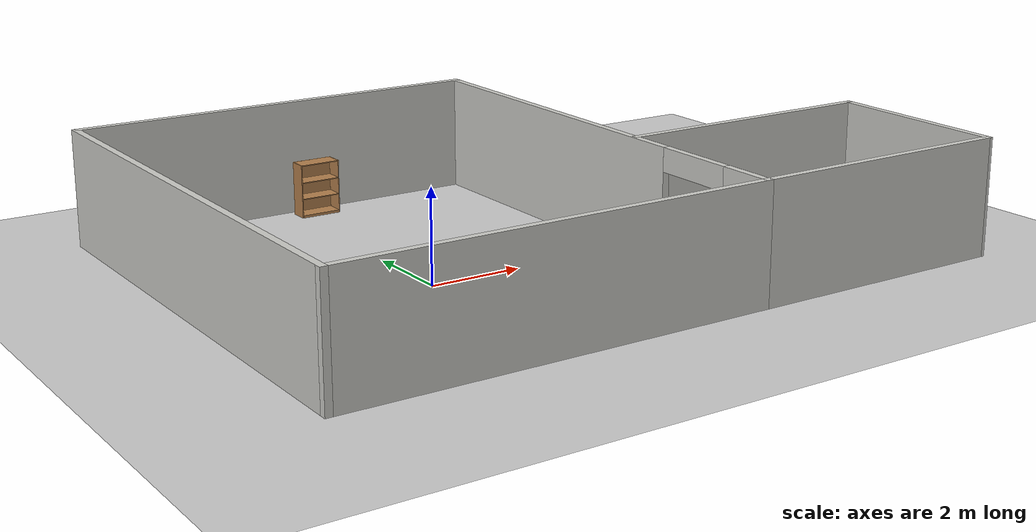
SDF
<sdf version="1.6">
 <world name="default">
  <light name="sun" type="directional">
   <pose>0 0 10 0 -0 0</pose>
   <diffuse>0.8 0.8 0.8 1</diffuse>
   <specular>0.2 0.2 0.2 1</specular>
   <attenuation>
    <range>1000</range>
    <constant>0.9</constant>
    <linear>0.01</linear>
    <quadratic>0.001</quadratic>
   </attenuation>
   <direction>-0.5 0.1 -0.9</direction>
  </light>
  <model name="ground_plane">
   <static>1</static>
   <link name="link">
    <collision name="collision">
     <geometry><plane><normal>0 0 1</normal><size>100 100</size></plane></geometry>
     <surface>
      <contact><collide_bitmask>65535</collide_bitmask></contact>
      <friction><ode><mu>100</mu><mu2>50</mu2></ode></friction>
     </surface>
    </collision>
    <visual name="visual">
     <cast_shadows>0</cast_shadows>
     <geometry><plane><normal>0 0 1</normal><size>100 100</size></plane></geometry>
     <material>
      <script><uri>file://media/materials/scripts/gazebo.material</uri><name>Gazebo/Grey</name></script>
     </material>
    </visual>
   </link>
  </model>
  <gravity>0 0 -9.8</gravity>
  <magnetic_field>6e-06 2.3e-05 -4.2e-05</magnetic_field>
  <atmosphere type="adiabatic"/>
  <physics name="default_physics" default="0" type="ode">
   <max_step_size>0.001</max_step_size>
   <real_time_factor>1</real_time_factor>
   <real_time_update_rate>1000</real_time_update_rate>
  </physics>
  <scene><ambient>0.4 0.4 0.4 1</ambient><background>0.7 0.7 0.7 1</background><shadows>1</shadows></scene>
  <spherical_coordinates>
   <surface_model>EARTH_WGS84</surface_model>
   <latitude_deg>0</latitude_deg>
   <longitude_deg>0</longitude_deg>
   <elevation>0</elevation>
   <heading_deg>0</heading_deg>
  </spherical_coordinates>
  <model name="trybuild">
   <pose>2.75577 0.731582 0.045482 0 -0 0</pose>
   <link name="Wall_10">
    <collision name="Wall_10_Collision">
     <geometry><box><size>6 0.15 2.5</size></box></geometry>
     <pose>0 0 1.25 0 -0 0</pose>
    </collision>
    <visual name="Wall_10_Visual">
     <pose>0 0 1.25 0 -0 0</pose>
     <geometry><box><size>6 0.15 2.5</size></box></geometry>
     <material>
      <script><uri>file://media/materials/scripts/gazebo.material</uri><name>Gazebo/CeilingTiled</name></script>
      <ambient>0.760784 0.662745 0.627451 1</ambient>
     </material>
     <meta><layer>0</layer></meta>
    </visual>
    <pose>4.57697 -1.44503 0 0 -0 0</pose>
   </link>
   <link name="Wall_13">
    <collision name="Wall_13_Collision">
     <geometry><box><size>6 0.15 2.5</size></box></geometry>
     <pose>0 0 1.25 0 -0 0</pose>
    </collision>
    <visual name="Wall_13_Visual">
     <pose>0 0 1.25 0 -0 0</pose>
     <geometry><box><size>6 0.15 2.5</size></box></geometry>
     <material>
      <script><uri>file://media/materials/scripts/gazebo.material</uri><name>Gazebo/CeilingTiled</name></script>
      <ambient>0.760784 0.662745 0.627451 1</ambient>
     </material>
     <meta><layer>0</layer></meta>
    </visual>
    <pose>4.52201 -5.42449 0 0 -0 0</pose>
   </link>
   <link name="Wall_16">
    <collision name="Wall_16_Collision">
     <geometry><box><size>4.12983 0.15 2.5</size></box></geometry>
     <pose>0 0 1.25 0 -0 0</pose>
    </collision>
    <visual name="Wall_16_Visual">
     <pose>0 0 1.25 0 -0 0</pose>
     <geometry><box><size>4.12983 0.15 2.5</size></box></geometry>
     <material>
      <script><uri>file://media/materials/scripts/gazebo.material</uri><name>Gazebo/CeilingTiled</name></script>
      <ambient>0.760784 0.662745 0.627451 1</ambient>
     </material>
     <meta><layer>0</layer></meta>
    </visual>
    <pose>7.47449 -3.43476 0 0 0 -1.58461</pose>
   </link>
   <link name="Wall_2">
    <collision name="Wall_2_Collision">
     <geometry><box><size>9.25 0.15 2.5</size></box></geometry>
     <pose>0 0 1.25 0 -0 0</pose>
    </collision>
    <visual name="Wall_2_Visual">
     <pose>0 0 1.25 0 -0 0</pose>
     <geometry><box><size>9.25 0.15 2.5</size></box></geometry>
     <material>
      <script><uri>file://media/materials/scripts/gazebo.material</uri><name>Gazebo/CeilingTiled</name></script>
      <ambient>0.760784 0.662745 0.627451 1</ambient>
     </material>
     <meta><layer>0</layer></meta>
    </visual>
    <pose>-2.95299 -5.42449 0 0 -0 3.14159</pose>
   </link>
   <link name="Wall_5">
    <collision name="Wall_5_Collision">
     <geometry><box><size>11 0.15 2.5</size></box></geometry>
     <pose>0 0 1.25 0 -0 0</pose>
    </collision>
    <visual name="Wall_5_Visual">
     <pose>0 0 1.25 0 -0 0</pose>
     <geometry><box><size>11 0.15 2.5</size></box></geometry>
     <material>
      <script><uri>file://media/materials/scripts/gazebo.material</uri><name>Gazebo/CeilingTiled</name></script>
      <ambient>0.760784 0.662745 0.627451 1</ambient>
     </material>
     <meta><layer>0</layer></meta>
    </visual>
    <pose>-7.50299 0.000514 0 0 -0 1.5708</pose>
   </link>
   <link name="Wall_6">
    <collision name="Wall_6_Collision">
     <geometry><box><size>9.25 0.15 2.5</size></box></geometry>
     <pose>0 0 1.25 0 -0 0</pose>
    </collision>
    <visual name="Wall_6_Visual">
     <pose>0 0 1.25 0 -0 0</pose>
     <geometry><box><size>9.25 0.15 2.5</size></box></geometry>
     <material>
      <script><uri>file://media/materials/scripts/gazebo.material</uri><name>Gazebo/CeilingTiled</name></script>
      <ambient>0.760784 0.662745 0.627451 1</ambient>
     </material>
     <meta><layer>0</layer></meta>
    </visual>
    <pose>-2.95299 5.42551 0 0 -0 0</pose>
   </link>
   <link name="Wall_8">
    <pose>1.59701 0.000514 0 0 0 -1.5708</pose>
    <visual name="Wall_8_Visual_0">
     <pose>-1.52047 0 1.25 0 -0 0</pose>
     <geometry><box><size>7.95906 0.15 2.5</size></box></geometry>
     <material>
      <script><uri>file://media/materials/scripts/gazebo.material</uri><name>Gazebo/CeilingTiled</name></script>
      <ambient>0.760784 0.662745 0.627451 1</ambient>
     </material>
     <meta><layer>0</layer></meta>
    </visual>
    <collision name="Wall_8_Collision_0">
     <geometry><box><size>7.95906 0.15 2.5</size></box></geometry>
     <pose>-1.52047 0 1.25 0 -0 0</pose>
    </collision>
    <visual name="Wall_8_Visual_1">
     <pose>4.87941 0 1.25 0 -0 0</pose>
     <geometry><box><size>1.24118 0.15 2.5</size></box></geometry>
     <material>
      <script><uri>file://media/materials/scripts/gazebo.material</uri><name>Gazebo/CeilingTiled</name></script>
      <ambient>0.760784 0.662745 0.627451 1</ambient>
     </material>
     <meta><layer>0</layer></meta>
    </visual>
    <collision name="Wall_8_Collision_1">
     <geometry><box><size>1.24118 0.15 2.5</size></box></geometry>
     <pose>4.87941 0 1.25 0 -0 0</pose>
    </collision>
    <visual name="Wall_8_Visual_2">
     <pose>3.35894 0 2.25 0 -0 0</pose>
     <geometry><box><size>1.79975 0.15 0.5</size></box></geometry>
     <material>
      <script><uri>file://media/materials/scripts/gazebo.material</uri><name>Gazebo/CeilingTiled</name></script>
      <ambient>0.760784 0.662745 0.627451 1</ambient>
     </material>
     <meta><layer>0</layer></meta>
    </visual>
    <collision name="Wall_8_Collision_2">
     <geometry><box><size>1.79975 0.15 0.5</size></box></geometry>
     <pose>3.35894 0 2.25 0 -0 0</pose>
    </collision>
   </link>
   <static>1</static>
  </model>
  <model name="bookshelf">
   <static>1</static>
   <link name="link">
    <inertial><mass>1</mass></inertial>
    <collision name="back">
     <pose>0 0.005 0.6 0 -0 0</pose>
     <geometry><box><size>0.9 0.01 1.2</size></box></geometry>
    </collision>
    <visual name="visual1">
     <pose>0 0.005 0.6 0 -0 0</pose>
     <geometry><box><size>0.9 0.01 1.2</size></box></geometry>
     <material>
      <script><uri>file://media/materials/scripts/gazebo.material</uri><name>Gazebo/Wood</name></script>
     </material>
    </visual>
    <collision name="left_side">
     <pose>0.45 -0.195 0.6 0 -0 0</pose>
     <geometry><box><size>0.02 0.4 1.2</size></box></geometry>
    </collision>
    <visual name="visual2">
     <pose>0.45 -0.195 0.6 0 -0 0</pose>
     <geometry><box><size>0.02 0.4 1.2</size></box></geometry>
     <material>
      <script><uri>file://media/materials/scripts/gazebo.material</uri><name>Gazebo/Wood</name></script>
     </material>
    </visual>
    <collision name="right_side">
     <pose>-0.45 -0.195 0.6 0 -0 0</pose>
     <geometry><box><size>0.02 0.4 1.2</size></box></geometry>
    </collision>
    <visual name="visual3">
     <pose>-0.45 -0.195 0.6 0 -0 0</pose>
     <geometry><box><size>0.02 0.4 1.2</size></box></geometry>
     <material>
      <script><uri>file://media/materials/scripts/gazebo.material</uri><name>Gazebo/Wood</name></script>
     </material>
    </visual>
    <collision name="bottom">
     <pose>0 -0.195 0.03 0 -0 0</pose>
     <geometry><box><size>0.88 0.4 0.06</size></box></geometry>
    </collision>
    <visual name="visual4">
     <pose>0 -0.195 0.03 0 -0 0</pose>
     <geometry><box><size>0.88 0.4 0.06</size></box></geometry>
     <material>
      <script><uri>file://media/materials/scripts/gazebo.material</uri><name>Gazebo/Wood</name></script>
     </material>
    </visual>
    <collision name="top">
     <pose>0 -0.195 1.19 0 -0 0</pose>
     <geometry><box><size>0.88 0.4 0.02</size></box></geometry>
    </collision>
    <visual name="visual5">
     <pose>0 -0.195 1.19 0 -0 0</pose>
     <geometry><box><size>0.88 0.4 0.02</size></box></geometry>
     <material>
      <script><uri>file://media/materials/scripts/gazebo.material</uri><name>Gazebo/Wood</name></script>
     </material>
    </visual>
    <collision name="low_shelf">
     <pose>0 -0.195 0.43 0 -0 0</pose>
     <geometry><box><size>0.88 0.4 0.02</size></box></geometry>
    </collision>
    <visual name="visual6">
     <pose>0 -0.195 0.43 0 -0 0</pose>
     <geometry><box><size>0.88 0.4 0.02</size></box></geometry>
     <material>
      <script><uri>file://media/materials/scripts/gazebo.material</uri><name>Gazebo/Wood</name></script>
     </material>
    </visual>
    <collision name="high_shelf">
     <pose>0 -0.195 0.8 0 -0 0</pose>
     <geometry><box><size>0.88 0.4 0.02</size></box></geometry>
    </collision>
    <visual name="visual7">
     <pose>0 -0.195 0.8 0 -0 0</pose>
     <geometry><box><size>0.88 0.4 0.02</size></box></geometry>
     <material>
      <script><uri>file://media/materials/scripts/gazebo.material</uri><name>Gazebo/Wood</name></script>
     </material>
    </visual>
   </link>
   <pose>0.504929 6.04255 0 0 -0 0</pose>
  </model>
 </world>
</sdf>
